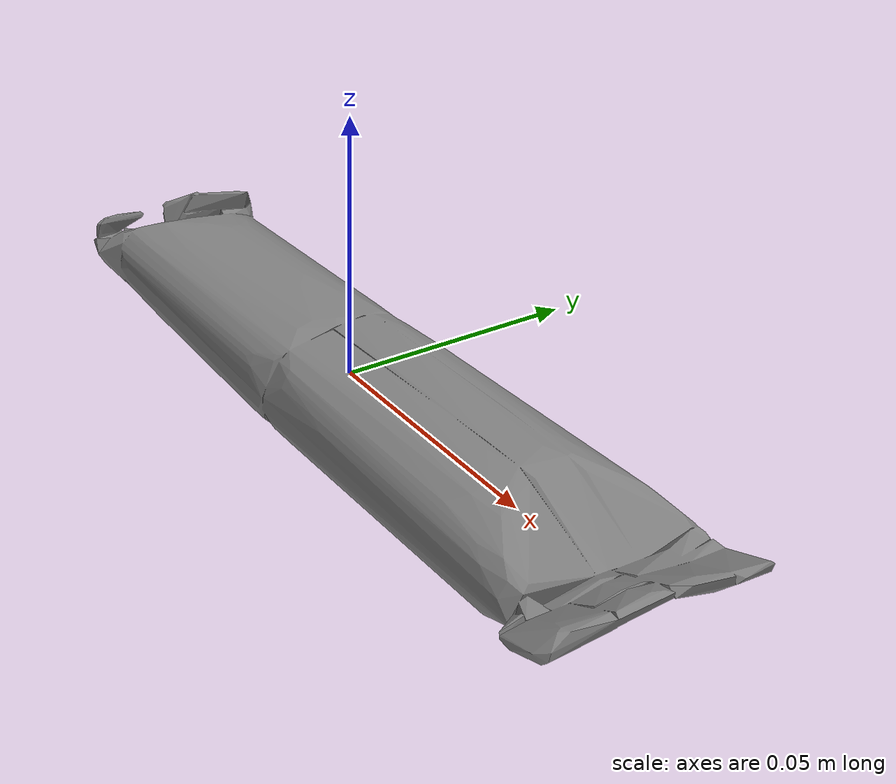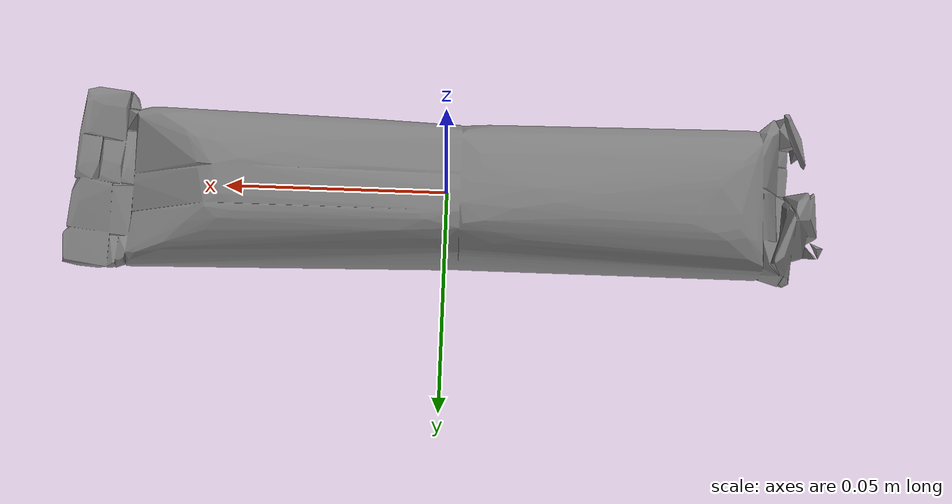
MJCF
<mujoco model="energy_bar_Nestle_Candy_19_oz_Butterfinger_Singles_116567_M">
  <default>
    <default class="visual">
      <geom group="2" type="mesh" contype="0" conaffinity="0" />
    </default>
    <default class="collision">
      <geom group="3" type="mesh" />
    </default>
  </default>
  <asset>
    <mesh file="energy_bar_Nestle_Candy_19_oz_Butterfinger_Singles_116567_M.stl" />
    <mesh file="energy_bar_Nestle_Candy_19_oz_Butterfinger_Singles_116567_M_collision_0.stl" />
    <mesh file="energy_bar_Nestle_Candy_19_oz_Butterfinger_Singles_116567_M_collision_1.stl" />
    <mesh file="energy_bar_Nestle_Candy_19_oz_Butterfinger_Singles_116567_M_collision_2.stl" />
    <mesh file="energy_bar_Nestle_Candy_19_oz_Butterfinger_Singles_116567_M_collision_3.stl" />
    <mesh file="energy_bar_Nestle_Candy_19_oz_Butterfinger_Singles_116567_M_collision_4.stl" />
    <mesh file="energy_bar_Nestle_Candy_19_oz_Butterfinger_Singles_116567_M_collision_5.stl" />
    <mesh file="energy_bar_Nestle_Candy_19_oz_Butterfinger_Singles_116567_M_collision_6.stl" />
    <mesh file="energy_bar_Nestle_Candy_19_oz_Butterfinger_Singles_116567_M_collision_7.stl" />
    <mesh file="energy_bar_Nestle_Candy_19_oz_Butterfinger_Singles_116567_M_collision_8.stl" />
    <mesh file="energy_bar_Nestle_Candy_19_oz_Butterfinger_Singles_116567_M_collision_9.stl" />
    <mesh file="energy_bar_Nestle_Candy_19_oz_Butterfinger_Singles_116567_M_collision_10.stl" />
    <mesh file="energy_bar_Nestle_Candy_19_oz_Butterfinger_Singles_116567_M_collision_11.stl" />
    <mesh file="energy_bar_Nestle_Candy_19_oz_Butterfinger_Singles_116567_M_collision_12.stl" />
    <mesh file="energy_bar_Nestle_Candy_19_oz_Butterfinger_Singles_116567_M_collision_13.stl" />
    <mesh file="energy_bar_Nestle_Candy_19_oz_Butterfinger_Singles_116567_M_collision_14.stl" />
    <mesh file="energy_bar_Nestle_Candy_19_oz_Butterfinger_Singles_116567_M_collision_15.stl" />
  </asset>
  <worldbody>
    <body name="energy_bar_Nestle_Candy_19_oz_Butterfinger_Singles_116567_M">
      <geom mesh="energy_bar_Nestle_Candy_19_oz_Butterfinger_Singles_116567_M" class="visual" />
      <geom mesh="energy_bar_Nestle_Candy_19_oz_Butterfinger_Singles_116567_M_collision_0" class="collision" />
      <geom mesh="energy_bar_Nestle_Candy_19_oz_Butterfinger_Singles_116567_M_collision_1" class="collision" />
      <geom mesh="energy_bar_Nestle_Candy_19_oz_Butterfinger_Singles_116567_M_collision_2" class="collision" />
      <geom mesh="energy_bar_Nestle_Candy_19_oz_Butterfinger_Singles_116567_M_collision_3" class="collision" />
      <geom mesh="energy_bar_Nestle_Candy_19_oz_Butterfinger_Singles_116567_M_collision_4" class="collision" />
      <geom mesh="energy_bar_Nestle_Candy_19_oz_Butterfinger_Singles_116567_M_collision_5" class="collision" />
      <geom mesh="energy_bar_Nestle_Candy_19_oz_Butterfinger_Singles_116567_M_collision_6" class="collision" />
      <geom mesh="energy_bar_Nestle_Candy_19_oz_Butterfinger_Singles_116567_M_collision_7" class="collision" />
      <geom mesh="energy_bar_Nestle_Candy_19_oz_Butterfinger_Singles_116567_M_collision_8" class="collision" />
      <geom mesh="energy_bar_Nestle_Candy_19_oz_Butterfinger_Singles_116567_M_collision_9" class="collision" />
      <geom mesh="energy_bar_Nestle_Candy_19_oz_Butterfinger_Singles_116567_M_collision_10" class="collision" />
      <geom mesh="energy_bar_Nestle_Candy_19_oz_Butterfinger_Singles_116567_M_collision_11" class="collision" />
      <geom mesh="energy_bar_Nestle_Candy_19_oz_Butterfinger_Singles_116567_M_collision_12" class="collision" />
      <geom mesh="energy_bar_Nestle_Candy_19_oz_Butterfinger_Singles_116567_M_collision_13" class="collision" />
      <geom mesh="energy_bar_Nestle_Candy_19_oz_Butterfinger_Singles_116567_M_collision_14" class="collision" />
      <geom mesh="energy_bar_Nestle_Candy_19_oz_Butterfinger_Singles_116567_M_collision_15" class="collision" />
    </body>
  </worldbody>
</mujoco>
